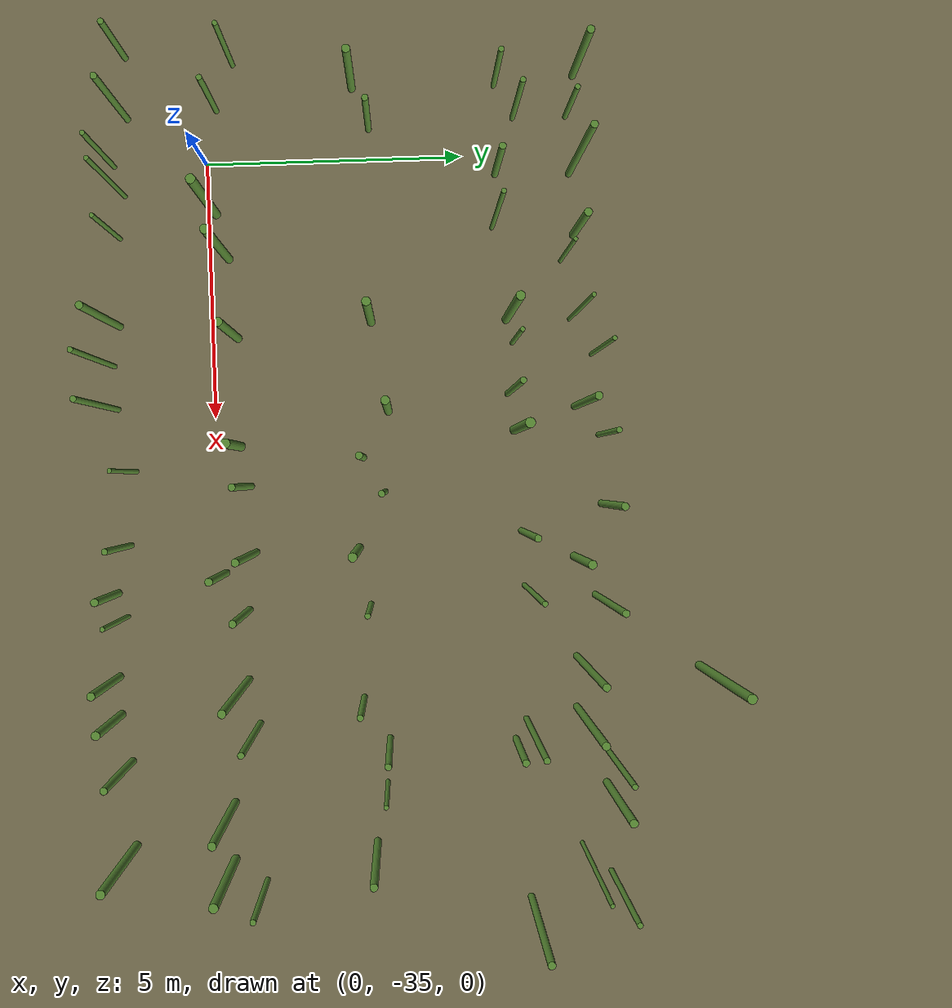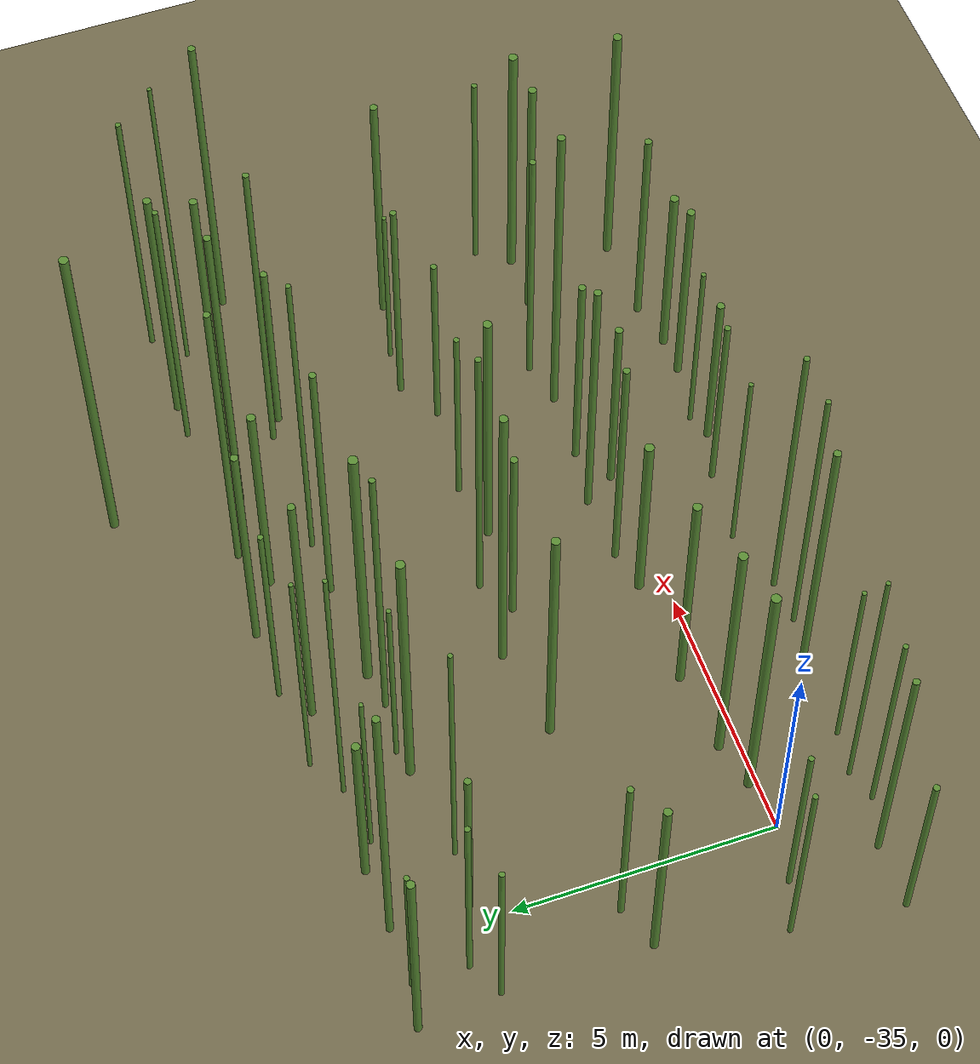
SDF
<sdf version="1.9">
 <world name="bamboo_field">
  <model name="ground_plane">
   <static>true</static>
   <link name="link">
    <collision name="collision">
     <geometry><plane><normal>0 0 1</normal><size>80.0 80.0</size></plane></geometry>
    </collision>
    <visual name="visual">
     <geometry><plane><normal>0 0 1</normal><size>80.0 80.0</size></plane></geometry>
     <material><diffuse>0.45 0.42 0.30 1</diffuse></material>
    </visual>
   </link>
  </model>
  <model name="bamboo_32">
   <static>true</static>
   <pose>-2.1592266123971275 -36.54874237058788 2.117270799944358 0 0 0</pose>
   <link name="link">
    <collision name="collision">
     <geometry>
      <cylinder><radius>0.06005201462747263</radius><length>4.234541599888716</length></cylinder>
     </geometry>
    </collision>
    <visual name="visual">
     <geometry>
      <cylinder><radius>0.06005201462747263</radius><length>4.234541599888716</length></cylinder>
     </geometry>
     <material><diffuse>0.35 0.55 0.20 1</diffuse><specular>0.1 0.1 0.1 1</specular></material>
    </visual>
   </link>
  </model>
  <model name="bamboo_33">
   <static>true</static>
   <pose>-0.9483042238103367 -36.54166267858879 2.846014971980326 0 0 0</pose>
   <link name="link">
    <collision name="collision">
     <geometry>
      <cylinder><radius>0.06275041836695716</radius><length>5.692029943960652</length></cylinder>
     </geometry>
    </collision>
    <visual name="visual">
     <geometry>
      <cylinder><radius>0.06275041836695716</radius><length>5.692029943960652</length></cylinder>
     </geometry>
     <material><diffuse>0.35 0.55 0.20 1</diffuse><specular>0.1 0.1 0.1 1</specular></material>
    </visual>
   </link>
  </model>
  <model name="bamboo_34">
   <static>true</static>
   <pose>-0.018022687571449536 -36.83303235766231 2.5934156509891286 0 0 0</pose>
   <link name="link">
    <collision name="collision">
     <geometry>
      <cylinder><radius>0.0477398412637032</radius><length>5.186831301978257</length></cylinder>
     </geometry>
    </collision>
    <visual name="visual">
     <geometry>
      <cylinder><radius>0.0477398412637032</radius><length>5.186831301978257</length></cylinder>
     </geometry>
     <material><diffuse>0.35 0.55 0.20 1</diffuse><specular>0.1 0.1 0.1 1</specular></material>
    </visual>
   </link>
  </model>
  <model name="bamboo_35">
   <static>true</static>
   <pose>0.5727541055435084 -36.64155463679989 3.1683551889179427 0 0 0</pose>
   <link name="link">
    <collision name="collision">
     <geometry>
      <cylinder><radius>0.04285826364537416</radius><length>6.336710377835885</length></cylinder>
     </geometry>
    </collision>
    <visual name="visual">
     <geometry>
      <cylinder><radius>0.04285826364537416</radius><length>6.336710377835885</length></cylinder>
     </geometry>
     <material><diffuse>0.35 0.55 0.20 1</diffuse><specular>0.1 0.1 0.1 1</specular></material>
    </visual>
   </link>
  </model>
  <model name="bamboo_36">
   <static>true</static>
   <pose>1.4002565031906615 -36.76580977371083 2.3716499219614464 0 0 0</pose>
   <link name="link">
    <collision name="collision">
     <geometry>
      <cylinder><radius>0.04400557326202934</radius><length>4.743299843922893</length></cylinder>
     </geometry>
    </collision>
    <visual name="visual">
     <geometry>
      <cylinder><radius>0.04400557326202934</radius><length>4.743299843922893</length></cylinder>
     </geometry>
     <material><diffuse>0.35 0.55 0.20 1</diffuse><specular>0.1 0.1 0.1 1</specular></material>
    </visual>
   </link>
  </model>
  <model name="bamboo_37">
   <static>true</static>
   <pose>3.1273858530629 -36.829887958729834 3.238763020664206 0 0 0</pose>
   <link name="link">
    <collision name="collision">
     <geometry>
      <cylinder><radius>0.06972595767667206</radius><length>6.477526041328412</length></cylinder>
     </geometry>
    </collision>
    <visual name="visual">
     <geometry>
      <cylinder><radius>0.06972595767667206</radius><length>6.477526041328412</length></cylinder>
     </geometry>
     <material><diffuse>0.35 0.55 0.20 1</diffuse><specular>0.1 0.1 0.1 1</specular></material>
    </visual>
   </link>
  </model>
  <model name="bamboo_38">
   <static>true</static>
   <pose>3.910121665371666 -36.96140846847981 3.4323836015788296 0 0 0</pose>
   <link name="link">
    <collision name="collision">
     <geometry>
      <cylinder><radius>0.05021295997117682</radius><length>6.864767203157659</length></cylinder>
     </geometry>
    </collision>
    <visual name="visual">
     <geometry>
      <cylinder><radius>0.05021295997117682</radius><length>6.864767203157659</length></cylinder>
     </geometry>
     <material><diffuse>0.35 0.55 0.20 1</diffuse><specular>0.1 0.1 0.1 1</specular></material>
    </visual>
   </link>
  </model>
  <model name="bamboo_39">
   <static>true</static>
   <pose>4.762497767869772 -36.91765869540068 3.503728984828804 0 0 0</pose>
   <link name="link">
    <collision name="collision">
     <geometry>
      <cylinder><radius>0.0558088598135927</radius><length>7.007457969657608</length></cylinder>
     </geometry>
    </collision>
    <visual name="visual">
     <geometry>
      <cylinder><radius>0.0558088598135927</radius><length>7.007457969657608</length></cylinder>
     </geometry>
     <material><diffuse>0.35 0.55 0.20 1</diffuse><specular>0.1 0.1 0.1 1</specular></material>
    </visual>
   </link>
  </model>
  <model name="bamboo_40">
   <static>true</static>
   <pose>5.99673965439162 -36.5851769966381 2.426308624534081 0 0 0</pose>
   <link name="link">
    <collision name="collision">
     <geometry>
      <cylinder><radius>0.04366303605498165</radius><length>4.852617249068162</length></cylinder>
     </geometry>
    </collision>
    <visual name="visual">
     <geometry>
      <cylinder><radius>0.04366303605498165</radius><length>4.852617249068162</length></cylinder>
     </geometry>
     <material><diffuse>0.35 0.55 0.20 1</diffuse><specular>0.1 0.1 0.1 1</specular></material>
    </visual>
   </link>
  </model>
  <model name="bamboo_41">
   <static>true</static>
   <pose>7.44706650178878 -36.74598061367253 2.315493664714464 0 0 0</pose>
   <link name="link">
    <collision name="collision">
     <geometry>
      <cylinder><radius>0.0584763544369442</radius><length>4.630987329428928</length></cylinder>
     </geometry>
    </collision>
    <visual name="visual">
     <geometry>
      <cylinder><radius>0.0584763544369442</radius><length>4.630987329428928</length></cylinder>
     </geometry>
     <material><diffuse>0.35 0.55 0.20 1</diffuse><specular>0.1 0.1 0.1 1</specular></material>
    </visual>
   </link>
  </model>
  <model name="bamboo_42">
   <static>true</static>
   <pose>8.380089034412117 -37.02889343469371 2.015646214304316 0 0 0</pose>
   <link name="link">
    <collision name="collision">
     <geometry>
      <cylinder><radius>0.07269881588553663</radius><length>4.031292428608632</length></cylinder>
     </geometry>
    </collision>
    <visual name="visual">
     <geometry>
      <cylinder><radius>0.07269881588553663</radius><length>4.031292428608632</length></cylinder>
     </geometry>
     <material><diffuse>0.35 0.55 0.20 1</diffuse><specular>0.1 0.1 0.1 1</specular></material>
    </visual>
   </link>
  </model>
  <model name="bamboo_43">
   <static>true</static>
   <pose>8.848396810214318 -36.85120201261432 2.230857340838204 0 0 0</pose>
   <link name="link">
    <collision name="collision">
     <geometry>
      <cylinder><radius>0.046714555719668385</radius><length>4.461714681676408</length></cylinder>
     </geometry>
    </collision>
    <visual name="visual">
     <geometry>
      <cylinder><radius>0.046714555719668385</radius><length>4.461714681676408</length></cylinder>
     </geometry>
     <material><diffuse>0.35 0.55 0.20 1</diffuse><specular>0.1 0.1 0.1 1</specular></material>
    </visual>
   </link>
  </model>
  <model name="bamboo_44">
   <static>true</static>
   <pose>10.026377481963207 -37.0536698300924 2.407194624654906 0 0 0</pose>
   <link name="link">
    <collision name="collision">
     <geometry>
      <cylinder><radius>0.0758806093569399</radius><length>4.814389249309812</length></cylinder>
     </geometry>
    </collision>
    <visual name="visual">
     <geometry>
      <cylinder><radius>0.0758806093569399</radius><length>4.814389249309812</length></cylinder>
     </geometry>
     <material><diffuse>0.35 0.55 0.20 1</diffuse><specular>0.1 0.1 0.1 1</specular></material>
    </visual>
   </link>
  </model>
  <model name="bamboo_45">
   <static>true</static>
   <pose>10.774326692398011 -37.044782404453116 2.184596935425467 0 0 0</pose>
   <link name="link">
    <collision name="collision">
     <geometry>
      <cylinder><radius>0.08230518566474276</radius><length>4.369193870850934</length></cylinder>
     </geometry>
    </collision>
    <visual name="visual">
     <geometry>
      <cylinder><radius>0.08230518566474276</radius><length>4.369193870850934</length></cylinder>
     </geometry>
     <material><diffuse>0.35 0.55 0.20 1</diffuse><specular>0.1 0.1 0.1 1</specular></material>
    </visual>
   </link>
  </model>
  <model name="bamboo_46">
   <static>true</static>
   <pose>11.698103563082068 -36.852282266445215 2.5239105248686964 0 0 0</pose>
   <link name="link">
    <collision name="collision">
     <geometry>
      <cylinder><radius>0.07185566886506897</radius><length>5.047821049737393</length></cylinder>
     </geometry>
    </collision>
    <visual name="visual">
     <geometry>
      <cylinder><radius>0.07185566886506897</radius><length>5.047821049737393</length></cylinder>
     </geometry>
     <material><diffuse>0.35 0.55 0.20 1</diffuse><specular>0.1 0.1 0.1 1</specular></material>
    </visual>
   </link>
  </model>
  <model name="bamboo_47">
   <static>true</static>
   <pose>13.364630752780506 -36.83070186469084 3.091180578411045 0 0 0</pose>
   <link name="link">
    <collision name="collision">
     <geometry>
      <cylinder><radius>0.08519642857799466</radius><length>6.18236115682209</length></cylinder>
     </geometry>
    </collision>
    <visual name="visual">
     <geometry>
      <cylinder><radius>0.08519642857799466</radius><length>6.18236115682209</length></cylinder>
     </geometry>
     <material><diffuse>0.35 0.55 0.20 1</diffuse><specular>0.1 0.1 0.1 1</specular></material>
    </visual>
   </link>
  </model>
  <model name="bamboo_96">
   <static>true</static>
   <pose>-1.9465329956966466 -34.438692027057265 2.4327692797572116 0 0 0</pose>
   <link name="link">
    <collision name="collision">
     <geometry>
      <cylinder><radius>0.0492574921218831</radius><length>4.865538559514423</length></cylinder>
     </geometry>
    </collision>
    <visual name="visual">
     <geometry>
      <cylinder><radius>0.0492574921218831</radius><length>4.865538559514423</length></cylinder>
     </geometry>
     <material><diffuse>0.35 0.55 0.20 1</diffuse><specular>0.1 0.1 0.1 1</specular></material>
    </visual>
   </link>
  </model>
  <model name="bamboo_97">
   <static>true</static>
   <pose>-1.0589468929285686 -34.78666331338461 2.2010522161815818 0 0 0</pose>
   <link name="link">
    <collision name="collision">
     <geometry>
      <cylinder><radius>0.05414993516374775</radius><length>4.4021044323631635</length></cylinder>
     </geometry>
    </collision>
    <visual name="visual">
     <geometry>
      <cylinder><radius>0.05414993516374775</radius><length>4.4021044323631635</length></cylinder>
     </geometry>
     <material><diffuse>0.35 0.55 0.20 1</diffuse><specular>0.1 0.1 0.1 1</specular></material>
    </visual>
   </link>
  </model>
  <model name="bamboo_98">
   <static>true</static>
   <pose>0.9787936306260429 -34.85750588275151 3.1067179335972166 0 0 0</pose>
   <link name="link">
    <collision name="collision">
     <geometry>
      <cylinder><radius>0.08871474655513689</radius><length>6.213435867194433</length></cylinder>
     </geometry>
    </collision>
    <visual name="visual">
     <geometry>
      <cylinder><radius>0.08871474655513689</radius><length>6.213435867194433</length></cylinder>
     </geometry>
     <material><diffuse>0.35 0.55 0.20 1</diffuse><specular>0.1 0.1 0.1 1</specular></material>
    </visual>
   </link>
  </model>
  <model name="bamboo_99">
   <static>true</static>
   <pose>1.8665637959454415 -34.63757336912719 3.1481284392526643 0 0 0</pose>
   <link name="link">
    <collision name="collision">
     <geometry>
      <cylinder><radius>0.08363598674992673</radius><length>6.296256878505329</length></cylinder>
     </geometry>
    </collision>
    <visual name="visual">
     <geometry>
      <cylinder><radius>0.08363598674992673</radius><length>6.296256878505329</length></cylinder>
     </geometry>
     <material><diffuse>0.35 0.55 0.20 1</diffuse><specular>0.1 0.1 0.1 1</specular></material>
    </visual>
   </link>
  </model>
  <model name="bamboo_100">
   <static>true</static>
   <pose>3.4400143605363067 -34.505289532956 2.8014148845038793 0 0 0</pose>
   <link name="link">
    <collision name="collision">
     <geometry>
      <cylinder><radius>0.08110578226497152</radius><length>5.602829769007759</length></cylinder>
     </geometry>
    </collision>
    <visual name="visual">
     <geometry>
      <cylinder><radius>0.08110578226497152</radius><length>5.602829769007759</length></cylinder>
     </geometry>
     <material><diffuse>0.35 0.55 0.20 1</diffuse><specular>0.1 0.1 0.1 1</specular></material>
    </visual>
   </link>
  </model>
  <model name="bamboo_101">
   <static>true</static>
   <pose>5.569846721636534 -34.52147917195232 2.2369031244229234 0 0 0</pose>
   <link name="link">
    <collision name="collision">
     <geometry>
      <cylinder><radius>0.08969590613551101</radius><length>4.473806248845847</length></cylinder>
     </geometry>
    </collision>
    <visual name="visual">
     <geometry>
      <cylinder><radius>0.08969590613551101</radius><length>4.473806248845847</length></cylinder>
     </geometry>
     <material><diffuse>0.35 0.55 0.20 1</diffuse><specular>0.1 0.1 0.1 1</specular></material>
    </visual>
   </link>
  </model>
  <model name="bamboo_102">
   <static>true</static>
   <pose>6.360937344659096 -34.34378486174407 2.9010289297775085 0 0 0</pose>
   <link name="link">
    <collision name="collision">
     <geometry>
      <cylinder><radius>0.06612862675651089</radius><length>5.802057859555017</length></cylinder>
     </geometry>
    </collision>
    <visual name="visual">
     <geometry>
      <cylinder><radius>0.06612862675651089</radius><length>5.802057859555017</length></cylinder>
     </geometry>
     <material><diffuse>0.35 0.55 0.20 1</diffuse><specular>0.1 0.1 0.1 1</specular></material>
    </visual>
   </link>
  </model>
  <model name="bamboo_103">
   <static>true</static>
   <pose>7.665107659871467 -34.282588387594636 3.2192618244902604 0 0 0</pose>
   <link name="link">
    <collision name="collision">
     <geometry>
      <cylinder><radius>0.07105136605360743</radius><length>6.438523648980521</length></cylinder>
     </geometry>
    </collision>
    <visual name="visual">
     <geometry>
      <cylinder><radius>0.07105136605360743</radius><length>6.438523648980521</length></cylinder>
     </geometry>
     <material><diffuse>0.35 0.55 0.20 1</diffuse><specular>0.1 0.1 0.1 1</specular></material>
    </visual>
   </link>
  </model>
  <model name="bamboo_104">
   <static>true</static>
   <pose>8.051829792190208 -34.89335611959158 2.3141141867617545 0 0 0</pose>
   <link name="link">
    <collision name="collision">
     <geometry>
      <cylinder><radius>0.07302140685960183</radius><length>4.628228373523509</length></cylinder>
     </geometry>
    </collision>
    <visual name="visual">
     <geometry>
      <cylinder><radius>0.07302140685960183</radius><length>4.628228373523509</length></cylinder>
     </geometry>
     <material><diffuse>0.35 0.55 0.20 1</diffuse><specular>0.1 0.1 0.1 1</specular></material>
    </visual>
   </link>
  </model>
  <model name="bamboo_105">
   <static>true</static>
   <pose>8.793263961592078 -34.45103244690708 2.5825185780620554 0 0 0</pose>
   <link name="link">
    <collision name="collision">
     <geometry>
      <cylinder><radius>0.06969055975597815</radius><length>5.165037156124111</length></cylinder>
     </geometry>
    </collision>
    <visual name="visual">
     <geometry>
      <cylinder><radius>0.06969055975597815</radius><length>5.165037156124111</length></cylinder>
     </geometry>
     <material><diffuse>0.35 0.55 0.20 1</diffuse><specular>0.1 0.1 0.1 1</specular></material>
    </visual>
   </link>
  </model>
  <model name="bamboo_106">
   <static>true</static>
   <pose>10.163905239293058 -34.50836092280744 3.8478220889650974 0 0 0</pose>
   <link name="link">
    <collision name="collision">
     <geometry>
      <cylinder><radius>0.07436924600356214</radius><length>7.695644177930195</length></cylinder>
     </geometry>
    </collision>
    <visual name="visual">
     <geometry>
      <cylinder><radius>0.07436924600356214</radius><length>7.695644177930195</length></cylinder>
     </geometry>
     <material><diffuse>0.35 0.55 0.20 1</diffuse><specular>0.1 0.1 0.1 1</specular></material>
    </visual>
   </link>
  </model>
  <model name="bamboo_107">
   <static>true</static>
   <pose>11.030243144163428 -34.310013516173576 3.0891247574211573 0 0 0</pose>
   <link name="link">
    <collision name="collision">
     <geometry>
      <cylinder><radius>0.061256948305210585</radius><length>6.178249514842315</length></cylinder>
     </geometry>
    </collision>
    <visual name="visual">
     <geometry>
      <cylinder><radius>0.061256948305210585</radius><length>6.178249514842315</length></cylinder>
     </geometry>
     <material><diffuse>0.35 0.55 0.20 1</diffuse><specular>0.1 0.1 0.1 1</specular></material>
    </visual>
   </link>
  </model>
  <model name="bamboo_108">
   <static>true</static>
   <pose>12.575947829144097 -34.8588539671001 3.1384140986381848 0 0 0</pose>
   <link name="link">
    <collision name="collision">
     <geometry>
      <cylinder><radius>0.07744788610348116</radius><length>6.2768281972763695</length></cylinder>
     </geometry>
    </collision>
    <visual name="visual">
     <geometry>
      <cylinder><radius>0.07744788610348116</radius><length>6.2768281972763695</length></cylinder>
     </geometry>
     <material><diffuse>0.35 0.55 0.20 1</diffuse><specular>0.1 0.1 0.1 1</specular></material>
    </visual>
   </link>
  </model>
  <model name="bamboo_109">
   <static>true</static>
   <pose>13.695048267356404 -34.88959223149289 3.000944354235851 0 0 0</pose>
   <link name="link">
    <collision name="collision">
     <geometry>
      <cylinder><radius>0.08713381203720204</radius><length>6.001888708471702</length></cylinder>
     </geometry>
    </collision>
    <visual name="visual">
     <geometry>
      <cylinder><radius>0.08713381203720204</radius><length>6.001888708471702</length></cylinder>
     </geometry>
     <material><diffuse>0.35 0.55 0.20 1</diffuse><specular>0.1 0.1 0.1 1</specular></material>
    </visual>
   </link>
  </model>
  <model name="bamboo_110">
   <static>true</static>
   <pose>14.129264748129978 -34.27256375628741 2.500735804824008 0 0 0</pose>
   <link name="link">
    <collision name="collision">
     <geometry><cylinder><radius>0.056116079167915</radius><length>5.001471609648016</length></cylinder></geometry>
    </collision>
    <visual name="visual">
     <geometry><cylinder><radius>0.056116079167915</radius><length>5.001471609648016</length></cylinder></geometry>
     <material><diffuse>0.35 0.55 0.20 1</diffuse><specular>0.1 0.1 0.1 1</specular></material>
    </visual>
   </link>
  </model>
  <model name="bamboo_167">
   <static>true</static>
   <pose>-1.4155188450176477 -32.108415523707826 2.4300461326549936 0 0 0</pose>
   <link name="link">
    <collision name="collision">
     <geometry>
      <cylinder><radius>0.07604199583287996</radius><length>4.860092265309987</length></cylinder>
     </geometry>
    </collision>
    <visual name="visual">
     <geometry>
      <cylinder><radius>0.07604199583287996</radius><length>4.860092265309987</length></cylinder>
     </geometry>
     <material><diffuse>0.35 0.55 0.20 1</diffuse><specular>0.1 0.1 0.1 1</specular></material>
    </visual>
   </link>
  </model>
  <model name="bamboo_168">
   <static>true</static>
   <pose>-0.597299834276604 -31.802785521620816 2.1901716785512617 0 0 0</pose>
   <link name="link">
    <collision name="collision">
     <geometry>
      <cylinder><radius>0.060799482513074765</radius><length>4.380343357102523</length></cylinder>
     </geometry>
    </collision>
    <visual name="visual">
     <geometry>
      <cylinder><radius>0.060799482513074765</radius><length>4.380343357102523</length></cylinder>
     </geometry>
     <material><diffuse>0.35 0.55 0.20 1</diffuse><specular>0.1 0.1 0.1 1</specular></material>
    </visual>
   </link>
  </model>
  <model name="bamboo_169">
   <static>true</static>
   <pose>3.2047398713425843 -31.875250535968583 3.1127414712307004 0 0 0</pose>
   <link name="link">
    <collision name="collision">
     <geometry>
      <cylinder><radius>0.08058846426386962</radius><length>6.225482942461401</length></cylinder>
     </geometry>
    </collision>
    <visual name="visual">
     <geometry>
      <cylinder><radius>0.08058846426386962</radius><length>6.225482942461401</length></cylinder>
     </geometry>
     <material><diffuse>0.35 0.55 0.20 1</diffuse><specular>0.1 0.1 0.1 1</specular></material>
    </visual>
   </link>
  </model>
  <model name="bamboo_170">
   <static>true</static>
   <pose>4.972254412967244 -31.590481988045003 3.73618429773813 0 0 0</pose>
   <link name="link">
    <collision name="collision">
     <geometry>
      <cylinder><radius>0.07751421251257391</radius><length>7.47236859547626</length></cylinder>
     </geometry>
    </collision>
    <visual name="visual">
     <geometry>
      <cylinder><radius>0.07751421251257391</radius><length>7.47236859547626</length></cylinder>
     </geometry>
     <material><diffuse>0.35 0.55 0.20 1</diffuse><specular>0.1 0.1 0.1 1</specular></material>
    </visual>
   </link>
  </model>
  <model name="bamboo_171">
   <static>true</static>
   <pose>5.867391386426516 -32.11138961738774 2.425477611344012 0 0 0</pose>
   <link name="link">
    <collision name="collision">
     <geometry>
      <cylinder><radius>0.06889592591949274</radius><length>4.850955222688024</length></cylinder>
     </geometry>
    </collision>
    <visual name="visual">
     <geometry>
      <cylinder><radius>0.06889592591949274</radius><length>4.850955222688024</length></cylinder>
     </geometry>
     <material><diffuse>0.35 0.55 0.20 1</diffuse><specular>0.1 0.1 0.1 1</specular></material>
    </visual>
   </link>
  </model>
  <model name="bamboo_172">
   <static>true</static>
   <pose>6.55283333013774 -31.703306065956394 3.5252112638736994 0 0 0</pose>
   <link name="link">
    <collision name="collision">
     <geometry>
      <cylinder><radius>0.058378052530767506</radius><length>7.050422527747399</length></cylinder>
     </geometry>
    </collision>
    <visual name="visual">
     <geometry>
      <cylinder><radius>0.058378052530767506</radius><length>7.050422527747399</length></cylinder>
     </geometry>
     <material><diffuse>0.35 0.55 0.20 1</diffuse><specular>0.1 0.1 0.1 1</specular></material>
    </visual>
   </link>
  </model>
  <model name="bamboo_173">
   <static>true</static>
   <pose>7.638914806317941 -32.24998334374553 3.2271465610709296 0 0 0</pose>
   <link name="link">
    <collision name="collision">
     <geometry>
      <cylinder><radius>0.08092134297703349</radius><length>6.454293122141859</length></cylinder>
     </geometry>
    </collision>
    <visual name="visual">
     <geometry>
      <cylinder><radius>0.08092134297703349</radius><length>6.454293122141859</length></cylinder>
     </geometry>
     <material><diffuse>0.35 0.55 0.20 1</diffuse><specular>0.1 0.1 0.1 1</specular></material>
    </visual>
   </link>
  </model>
  <model name="bamboo_174">
   <static>true</static>
   <pose>8.752548249040956 -32.0520717435821 2.3608321439217086 0 0 0</pose>
   <link name="link">
    <collision name="collision">
     <geometry>
      <cylinder><radius>0.05337238625770553</radius><length>4.721664287843417</length></cylinder>
     </geometry>
    </collision>
    <visual name="visual">
     <geometry>
      <cylinder><radius>0.05337238625770553</radius><length>4.721664287843417</length></cylinder>
     </geometry>
     <material><diffuse>0.35 0.55 0.20 1</diffuse><specular>0.1 0.1 0.1 1</specular></material>
    </visual>
   </link>
  </model>
  <model name="bamboo_175">
   <static>true</static>
   <pose>10.587754462219372 -32.2469010568964 2.2837493083025375 0 0 0</pose>
   <link name="link">
    <collision name="collision">
     <geometry>
      <cylinder><radius>0.06003921719997578</radius><length>4.567498616605075</length></cylinder>
     </geometry>
    </collision>
    <visual name="visual">
     <geometry>
      <cylinder><radius>0.06003921719997578</radius><length>4.567498616605075</length></cylinder>
     </geometry>
     <material><diffuse>0.35 0.55 0.20 1</diffuse><specular>0.1 0.1 0.1 1</specular></material>
    </visual>
   </link>
  </model>
  <model name="bamboo_176">
   <static>true</static>
   <pose>11.402015922896698 -31.763243848343162 2.6817919635386653 0 0 0</pose>
   <link name="link">
    <collision name="collision">
     <geometry>
      <cylinder><radius>0.06099162468822515</radius><length>5.363583927077331</length></cylinder>
     </geometry>
    </collision>
    <visual name="visual">
     <geometry>
      <cylinder><radius>0.06099162468822515</radius><length>5.363583927077331</length></cylinder>
     </geometry>
     <material><diffuse>0.35 0.55 0.20 1</diffuse><specular>0.1 0.1 0.1 1</specular></material>
    </visual>
   </link>
  </model>
  <model name="bamboo_177">
   <static>true</static>
   <pose>12.2638999341245 -31.83587429841481 2.1052176528510436 0 0 0</pose>
   <link name="link">
    <collision name="collision">
     <geometry>
      <cylinder><radius>0.044247851998858966</radius><length>4.210435305702087</length></cylinder>
     </geometry>
    </collision>
    <visual name="visual">
     <geometry>
      <cylinder><radius>0.044247851998858966</radius><length>4.210435305702087</length></cylinder>
     </geometry>
     <material><diffuse>0.35 0.55 0.20 1</diffuse><specular>0.1 0.1 0.1 1</specular></material>
    </visual>
   </link>
  </model>
  <model name="bamboo_178">
   <static>true</static>
   <pose>13.432731421083183 -32.077144234707696 2.9713234097819923 0 0 0</pose>
   <link name="link">
    <collision name="collision">
     <geometry>
      <cylinder><radius>0.07309693464041306</radius><length>5.9426468195639846</length></cylinder>
     </geometry>
    </collision>
    <visual name="visual">
     <geometry>
      <cylinder><radius>0.07309693464041306</radius><length>5.9426468195639846</length></cylinder>
     </geometry>
     <material><diffuse>0.35 0.55 0.20 1</diffuse><specular>0.1 0.1 0.1 1</specular></material>
    </visual>
   </link>
  </model>
  <model name="bamboo_236">
   <static>true</static>
   <pose>-1.3823212424713174 -29.309667143125626 2.226897225170036 0 0 0</pose>
   <link name="link">
    <collision name="collision">
     <geometry>
      <cylinder><radius>0.0524805826546699</radius><length>4.453794450340072</length></cylinder>
     </geometry>
    </collision>
    <visual name="visual">
     <geometry>
      <cylinder><radius>0.0524805826546699</radius><length>4.453794450340072</length></cylinder>
     </geometry>
     <material><diffuse>0.35 0.55 0.20 1</diffuse><specular>0.1 0.1 0.1 1</specular></material>
    </visual>
   </link>
  </model>
  <model name="bamboo_237">
   <static>true</static>
   <pose>-0.73010751340728 -28.96154233679682 2.5205795422798065 0 0 0</pose>
   <link name="link">
    <collision name="collision">
     <geometry>
      <cylinder><radius>0.05308883382937479</radius><length>5.041159084559613</length></cylinder>
     </geometry>
    </collision>
    <visual name="visual">
     <geometry>
      <cylinder><radius>0.05308883382937479</radius><length>5.041159084559613</length></cylinder>
     </geometry>
     <material><diffuse>0.35 0.55 0.20 1</diffuse><specular>0.1 0.1 0.1 1</specular></material>
    </visual>
   </link>
  </model>
  <model name="bamboo_238">
   <static>true</static>
   <pose>0.3687104622570778 -29.342568035633374 2.245274843807942 0 0 0</pose>
   <link name="link">
    <collision name="collision">
     <geometry>
      <cylinder><radius>0.0645600097627112</radius><length>4.490549687615884</length></cylinder>
     </geometry>
    </collision>
    <visual name="visual">
     <geometry>
      <cylinder><radius>0.0645600097627112</radius><length>4.490549687615884</length></cylinder>
     </geometry>
     <material><diffuse>0.35 0.55 0.20 1</diffuse><specular>0.1 0.1 0.1 1</specular></material>
    </visual>
   </link>
  </model>
  <model name="bamboo_239">
   <static>true</static>
   <pose>1.4230685245848338 -29.435286474835173 3.3638585205012745 0 0 0</pose>
   <link name="link">
    <collision name="collision">
     <geometry>
      <cylinder><radius>0.04438953705523655</radius><length>6.727717041002549</length></cylinder>
     </geometry>
    </collision>
    <visual name="visual">
     <geometry>
      <cylinder><radius>0.04438953705523655</radius><length>6.727717041002549</length></cylinder>
     </geometry>
     <material><diffuse>0.35 0.55 0.20 1</diffuse><specular>0.1 0.1 0.1 1</specular></material>
    </visual>
   </link>
  </model>
  <model name="bamboo_240">
   <static>true</static>
   <pose>3.236169453394419 -29.212607899510342 3.4236182080144255 0 0 0</pose>
   <link name="link">
    <collision name="collision">
     <geometry>
      <cylinder><radius>0.08256810253765628</radius><length>6.847236416028851</length></cylinder>
     </geometry>
    </collision>
    <visual name="visual">
     <geometry>
      <cylinder><radius>0.08256810253765628</radius><length>6.847236416028851</length></cylinder>
     </geometry>
     <material><diffuse>0.35 0.55 0.20 1</diffuse><specular>0.1 0.1 0.1 1</specular></material>
    </visual>
   </link>
  </model>
  <model name="bamboo_241">
   <static>true</static>
   <pose>3.7017346976530523 -29.10573677273973 2.4019607423553717 0 0 0</pose>
   <link name="link">
    <collision name="collision">
     <geometry>
      <cylinder><radius>0.046068122753922844</radius><length>4.803921484710743</length></cylinder>
     </geometry>
    </collision>
    <visual name="visual">
     <geometry>
      <cylinder><radius>0.046068122753922844</radius><length>4.803921484710743</length></cylinder>
     </geometry>
     <material><diffuse>0.35 0.55 0.20 1</diffuse><specular>0.1 0.1 0.1 1</specular></material>
    </visual>
   </link>
  </model>
  <model name="bamboo_242">
   <static>true</static>
   <pose>4.701187351698001 -29.230634061470788 3.607323452577173 0 0 0</pose>
   <link name="link">
    <collision name="collision">
     <geometry>
      <cylinder><radius>0.05844555827506104</radius><length>7.214646905154346</length></cylinder>
     </geometry>
    </collision>
    <visual name="visual">
     <geometry>
      <cylinder><radius>0.05844555827506104</radius><length>7.214646905154346</length></cylinder>
     </geometry>
     <material><diffuse>0.35 0.55 0.20 1</diffuse><specular>0.1 0.1 0.1 1</specular></material>
    </visual>
   </link>
  </model>
  <model name="bamboo_243">
   <static>true</static>
   <pose>5.417507648991486 -29.120582730042862 3.437739319781439 0 0 0</pose>
   <link name="link">
    <collision name="collision">
     <geometry>
      <cylinder><radius>0.08997975219671935</radius><length>6.875478639562878</length></cylinder>
     </geometry>
    </collision>
    <visual name="visual">
     <geometry>
      <cylinder><radius>0.08997975219671935</radius><length>6.875478639562878</length></cylinder>
     </geometry>
     <material><diffuse>0.35 0.55 0.20 1</diffuse><specular>0.1 0.1 0.1 1</specular></material>
    </visual>
   </link>
  </model>
  <model name="bamboo_244">
   <static>true</static>
   <pose>7.408968689511028 -29.044425809149864 3.360217981299162 0 0 0</pose>
   <link name="link">
    <collision name="collision">
     <geometry>
      <cylinder><radius>0.0624987247831498</radius><length>6.720435962598324</length></cylinder>
     </geometry>
    </collision>
    <visual name="visual">
     <geometry>
      <cylinder><radius>0.0624987247831498</radius><length>6.720435962598324</length></cylinder>
     </geometry>
     <material><diffuse>0.35 0.55 0.20 1</diffuse><specular>0.1 0.1 0.1 1</specular></material>
    </visual>
   </link>
  </model>
  <model name="bamboo_245">
   <static>true</static>
   <pose>8.482746315091845 -29.02149932564233 3.932529227868214 0 0 0</pose>
   <link name="link">
    <collision name="collision">
     <geometry>
      <cylinder><radius>0.04909815682760687</radius><length>7.865058455736428</length></cylinder>
     </geometry>
    </collision>
    <visual name="visual">
     <geometry>
      <cylinder><radius>0.04909815682760687</radius><length>7.865058455736428</length></cylinder>
     </geometry>
     <material><diffuse>0.35 0.55 0.20 1</diffuse><specular>0.1 0.1 0.1 1</specular></material>
    </visual>
   </link>
  </model>
  <model name="bamboo_246">
   <static>true</static>
   <pose>11.118797283522262 -29.066844320996047 3.8818081098630692 0 0 0</pose>
   <link name="link">
    <collision name="collision">
     <geometry>
      <cylinder><radius>0.057301154117093654</radius><length>7.7636162197261385</length></cylinder>
     </geometry>
    </collision>
    <visual name="visual">
     <geometry>
      <cylinder><radius>0.057301154117093654</radius><length>7.7636162197261385</length></cylinder>
     </geometry>
     <material><diffuse>0.35 0.55 0.20 1</diffuse><specular>0.1 0.1 0.1 1</specular></material>
    </visual>
   </link>
  </model>
  <model name="bamboo_247">
   <static>true</static>
   <pose>11.504568489616487 -29.285563294467288 2.2503405902538054 0 0 0</pose>
   <link name="link">
    <collision name="collision">
     <geometry>
      <cylinder><radius>0.06754207077415698</radius><length>4.500681180507611</length></cylinder>
     </geometry>
    </collision>
    <visual name="visual">
     <geometry>
      <cylinder><radius>0.06754207077415698</radius><length>4.500681180507611</length></cylinder>
     </geometry>
     <material><diffuse>0.35 0.55 0.20 1</diffuse><specular>0.1 0.1 0.1 1</specular></material>
    </visual>
   </link>
  </model>
  <model name="bamboo_248">
   <static>true</static>
   <pose>14.628289091839626 -29.08133252817651 3.685060008226778 0 0 0</pose>
   <link name="link">
    <collision name="collision">
     <geometry>
      <cylinder><radius>0.07025694539309277</radius><length>7.370120016453556</length></cylinder>
     </geometry>
    </collision>
    <visual name="visual">
     <geometry>
      <cylinder><radius>0.07025694539309277</radius><length>7.370120016453556</length></cylinder>
     </geometry>
     <material><diffuse>0.35 0.55 0.20 1</diffuse><specular>0.1 0.1 0.1 1</specular></material>
    </visual>
   </link>
  </model>
  <model name="bamboo_303">
   <static>true</static>
   <pose>-1.524612251302597 -27.75223152767365 2.6955397742783003 0 0 0</pose>
   <link name="link">
    <collision name="collision">
     <geometry>
      <cylinder><radius>0.0726767049209351</radius><length>5.3910795485566005</length></cylinder>
     </geometry>
    </collision>
    <visual name="visual">
     <geometry>
      <cylinder><radius>0.0726767049209351</radius><length>5.3910795485566005</length></cylinder>
     </geometry>
     <material><diffuse>0.35 0.55 0.20 1</diffuse><specular>0.1 0.1 0.1 1</specular></material>
    </visual>
   </link>
  </model>
  <model name="bamboo_304">
   <static>true</static>
   <pose>-0.7220920466624949 -27.919458376060163 2.0069465898898153 0 0 0</pose>
   <link name="link">
    <collision name="collision">
     <geometry>
      <cylinder><radius>0.051134510798313326</radius><length>4.013893179779631</length></cylinder>
     </geometry>
    </collision>
    <visual name="visual">
     <geometry>
      <cylinder><radius>0.051134510798313326</radius><length>4.013893179779631</length></cylinder>
     </geometry>
     <material><diffuse>0.35 0.55 0.20 1</diffuse><specular>0.1 0.1 0.1 1</specular></material>
    </visual>
   </link>
  </model>
  <model name="bamboo_305">
   <static>true</static>
   <pose>0.40465159427539815 -27.88600065366091 3.6467208747515687 0 0 0</pose>
   <link name="link">
    <collision name="collision">
     <geometry>
      <cylinder><radius>0.06659668042483793</radius><length>7.293441749503137</length></cylinder>
     </geometry>
    </collision>
    <visual name="visual">
     <geometry>
      <cylinder><radius>0.06659668042483793</radius><length>7.293441749503137</length></cylinder>
     </geometry>
     <material><diffuse>0.35 0.55 0.20 1</diffuse><specular>0.1 0.1 0.1 1</specular></material>
    </visual>
   </link>
  </model>
  <model name="bamboo_306">
   <static>true</static>
   <pose>1.6082877869182424 -27.834844049208023 2.225689277532955 0 0 0</pose>
   <link name="link">
    <collision name="collision">
     <geometry>
      <cylinder><radius>0.07625119729544591</radius><length>4.45137855506591</length></cylinder>
     </geometry>
    </collision>
    <visual name="visual">
     <geometry>
      <cylinder><radius>0.07625119729544591</radius><length>4.45137855506591</length></cylinder>
     </geometry>
     <material><diffuse>0.35 0.55 0.20 1</diffuse><specular>0.1 0.1 0.1 1</specular></material>
    </visual>
   </link>
  </model>
  <model name="bamboo_307">
   <static>true</static>
   <pose>2.1187021446111225 -28.104809075124255 2.4121632437004283 0 0 0</pose>
   <link name="link">
    <collision name="collision">
     <geometry>
      <cylinder><radius>0.040782289818177477</radius><length>4.824326487400857</length></cylinder>
     </geometry>
    </collision>
    <visual name="visual">
     <geometry>
      <cylinder><radius>0.040782289818177477</radius><length>4.824326487400857</length></cylinder>
     </geometry>
     <material><diffuse>0.35 0.55 0.20 1</diffuse><specular>0.1 0.1 0.1 1</specular></material>
    </visual>
   </link>
  </model>
  <model name="bamboo_308">
   <static>true</static>
   <pose>3.268774149706623 -27.96427497321096 3.4810821569597232 0 0 0</pose>
   <link name="link">
    <collision name="collision">
     <geometry>
      <cylinder><radius>0.042433816062187456</radius><length>6.9621643139194465</length></cylinder>
     </geometry>
    </collision>
    <visual name="visual">
     <geometry>
      <cylinder><radius>0.042433816062187456</radius><length>6.9621643139194465</length></cylinder>
     </geometry>
     <material><diffuse>0.35 0.55 0.20 1</diffuse><specular>0.1 0.1 0.1 1</specular></material>
    </visual>
   </link>
  </model>
  <model name="bamboo_309">
   <static>true</static>
   <pose>3.976580504157753 -27.55726208841793 3.007791697881869 0 0 0</pose>
   <link name="link">
    <collision name="collision">
     <geometry>
      <cylinder><radius>0.042822201751223046</radius><length>6.015583395763738</length></cylinder>
     </geometry>
    </collision>
    <visual name="visual">
     <geometry>
      <cylinder><radius>0.042822201751223046</radius><length>6.015583395763738</length></cylinder>
     </geometry>
     <material><diffuse>0.35 0.55 0.20 1</diffuse><specular>0.1 0.1 0.1 1</specular></material>
    </visual>
   </link>
  </model>
  <model name="bamboo_310">
   <static>true</static>
   <pose>4.991168662231505 -27.917077363551307 3.3450638028738275 0 0 0</pose>
   <link name="link">
    <collision name="collision">
     <geometry>
      <cylinder><radius>0.06989588371386311</radius><length>6.690127605747655</length></cylinder>
     </geometry>
    </collision>
    <visual name="visual">
     <geometry>
      <cylinder><radius>0.06989588371386311</radius><length>6.690127605747655</length></cylinder>
     </geometry>
     <material><diffuse>0.35 0.55 0.20 1</diffuse><specular>0.1 0.1 0.1 1</specular></material>
    </visual>
   </link>
  </model>
  <model name="bamboo_311">
   <static>true</static>
   <pose>5.566677601096482 -27.464348289633545 2.6010019075148394 0 0 0</pose>
   <link name="link">
    <collision name="collision">
     <geometry>
      <cylinder><radius>0.05105213702230163</radius><length>5.202003815029679</length></cylinder>
     </geometry>
    </collision>
    <visual name="visual">
     <geometry>
      <cylinder><radius>0.05105213702230163</radius><length>5.202003815029679</length></cylinder>
     </geometry>
     <material><diffuse>0.35 0.55 0.20 1</diffuse><specular>0.1 0.1 0.1 1</specular></material>
    </visual>
   </link>
  </model>
  <model name="bamboo_312">
   <static>true</static>
   <pose>6.922827362752416 -27.44770930341167 2.854401164589087 0 0 0</pose>
   <link name="link">
    <collision name="collision">
     <geometry>
      <cylinder><radius>0.07129965688241649</radius><length>5.708802329178174</length></cylinder>
     </geometry>
    </collision>
    <visual name="visual">
     <geometry>
      <cylinder><radius>0.07129965688241649</radius><length>5.708802329178174</length></cylinder>
     </geometry>
     <material><diffuse>0.35 0.55 0.20 1</diffuse><specular>0.1 0.1 0.1 1</specular></material>
    </visual>
   </link>
  </model>
  <model name="bamboo_313">
   <static>true</static>
   <pose>7.943954618835079 -28.023860142674636 2.6374689146326245 0 0 0</pose>
   <link name="link">
    <collision name="collision">
     <geometry>
      <cylinder><radius>0.07929022979902589</radius><length>5.274937829265249</length></cylinder>
     </geometry>
    </collision>
    <visual name="visual">
     <geometry>
      <cylinder><radius>0.07929022979902589</radius><length>5.274937829265249</length></cylinder>
     </geometry>
     <material><diffuse>0.35 0.55 0.20 1</diffuse><specular>0.1 0.1 0.1 1</specular></material>
    </visual>
   </link>
  </model>
  <model name="bamboo_314">
   <static>true</static>
   <pose>8.713626943999524 -27.63300870991067 3.698681864520081 0 0 0</pose>
   <link name="link">
    <collision name="collision">
     <geometry><cylinder><radius>0.063675941020611</radius><length>7.397363729040162</length></cylinder></geometry>
    </collision>
    <visual name="visual">
     <geometry><cylinder><radius>0.063675941020611</radius><length>7.397363729040162</length></cylinder></geometry>
     <material><diffuse>0.35 0.55 0.20 1</diffuse><specular>0.1 0.1 0.1 1</specular></material>
    </visual>
   </link>
  </model>
  <model name="bamboo_315">
   <static>true</static>
   <pose>9.915522645556367 -28.034447542410895 3.935572377093253 0 0 0</pose>
   <link name="link">
    <collision name="collision">
     <geometry>
      <cylinder><radius>0.06811929747934545</radius><length>7.871144754186506</length></cylinder>
     </geometry>
    </collision>
    <visual name="visual">
     <geometry>
      <cylinder><radius>0.06811929747934545</radius><length>7.871144754186506</length></cylinder>
     </geometry>
     <material><diffuse>0.35 0.55 0.20 1</diffuse><specular>0.1 0.1 0.1 1</specular></material>
    </visual>
   </link>
  </model>
  <model name="bamboo_316">
   <static>true</static>
   <pose>10.915558691396438 -28.063587670583445 3.8444522090224447 0 0 0</pose>
   <link name="link">
    <collision name="collision">
     <geometry>
      <cylinder><radius>0.07233529257739724</radius><length>7.688904418044889</length></cylinder>
     </geometry>
    </collision>
    <visual name="visual">
     <geometry>
      <cylinder><radius>0.07233529257739724</radius><length>7.688904418044889</length></cylinder>
     </geometry>
     <material><diffuse>0.35 0.55 0.20 1</diffuse><specular>0.1 0.1 0.1 1</specular></material>
    </visual>
   </link>
  </model>
  <model name="bamboo_317">
   <static>true</static>
   <pose>11.734444637667945 -27.516778147209575 3.347343841269157 0 0 0</pose>
   <link name="link">
    <collision name="collision">
     <geometry>
      <cylinder><radius>0.05342307939274906</radius><length>6.694687682538314</length></cylinder>
     </geometry>
    </collision>
    <visual name="visual">
     <geometry>
      <cylinder><radius>0.05342307939274906</radius><length>6.694687682538314</length></cylinder>
     </geometry>
     <material><diffuse>0.35 0.55 0.20 1</diffuse><specular>0.1 0.1 0.1 1</specular></material>
    </visual>
   </link>
  </model>
  <model name="bamboo_318">
   <static>true</static>
   <pose>12.423240468278335 -27.519680772085074 3.1177009525450545 0 0 0</pose>
   <link name="link">
    <collision name="collision">
     <geometry>
      <cylinder><radius>0.07621526199260745</radius><length>6.235401905090109</length></cylinder>
     </geometry>
    </collision>
    <visual name="visual">
     <geometry>
      <cylinder><radius>0.07621526199260745</radius><length>6.235401905090109</length></cylinder>
     </geometry>
     <material><diffuse>0.35 0.55 0.20 1</diffuse><specular>0.1 0.1 0.1 1</specular></material>
    </visual>
   </link>
  </model>
  <model name="bamboo_319">
   <static>true</static>
   <pose>13.594304537356344 -28.046191128541917 3.8743195264044954 0 0 0</pose>
   <link name="link">
    <collision name="collision">
     <geometry>
      <cylinder><radius>0.04076668531142464</radius><length>7.748639052808991</length></cylinder>
     </geometry>
    </collision>
    <visual name="visual">
     <geometry>
      <cylinder><radius>0.04076668531142464</radius><length>7.748639052808991</length></cylinder>
     </geometry>
     <material><diffuse>0.35 0.55 0.20 1</diffuse><specular>0.1 0.1 0.1 1</specular></material>
    </visual>
   </link>
  </model>
  <model name="bamboo_320">
   <static>true</static>
   <pose>14.163838250967872 -27.487723946436763 3.2088030681575623 0 0 0</pose>
   <link name="link">
    <collision name="collision">
     <geometry>
      <cylinder><radius>0.052129659092287076</radius><length>6.417606136315125</length></cylinder>
     </geometry>
    </collision>
    <visual name="visual">
     <geometry>
      <cylinder><radius>0.052129659092287076</radius><length>6.417606136315125</length></cylinder>
     </geometry>
     <material><diffuse>0.35 0.55 0.20 1</diffuse><specular>0.1 0.1 0.1 1</specular></material>
    </visual>
   </link>
  </model>
  <model name="bamboo_389">
   <static>true</static>
   <pose>10.179622772778497 -25.618203625857742 3.984972451289349 0 0 0</pose>
   <link name="link">
    <collision name="collision">
     <geometry>
      <cylinder><radius>0.08593843559149127</radius><length>7.969944902578698</length></cylinder>
     </geometry>
    </collision>
    <visual name="visual">
     <geometry>
      <cylinder><radius>0.08593843559149127</radius><length>7.969944902578698</length></cylinder>
     </geometry>
     <material><diffuse>0.35 0.55 0.20 1</diffuse><specular>0.1 0.1 0.1 1</specular></material>
    </visual>
   </link>
  </model>
 </world>
</sdf>
